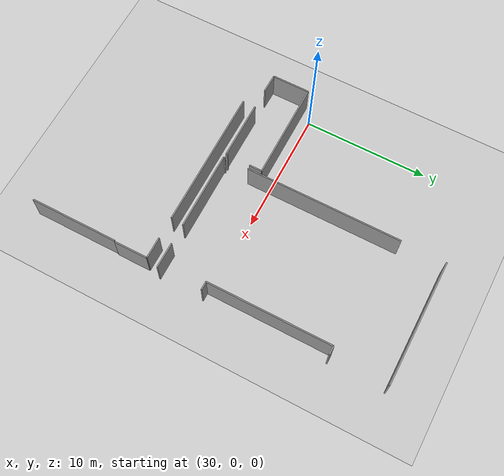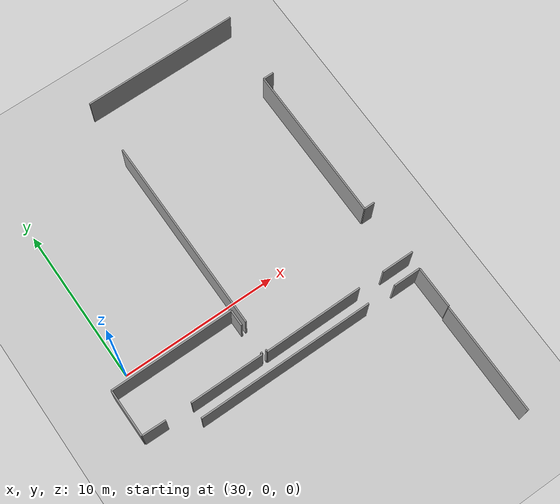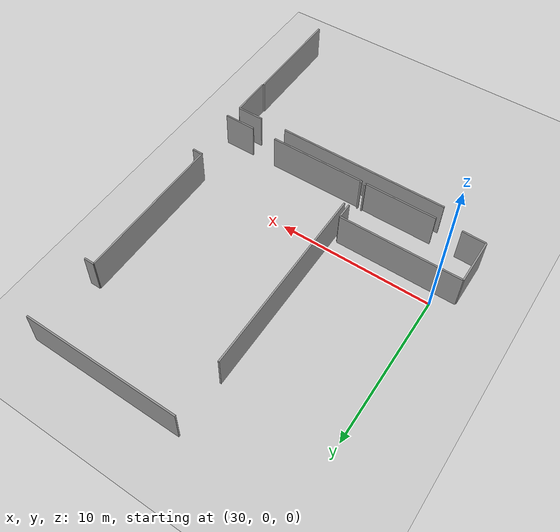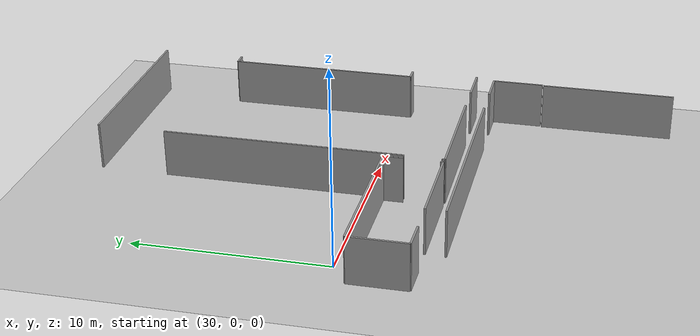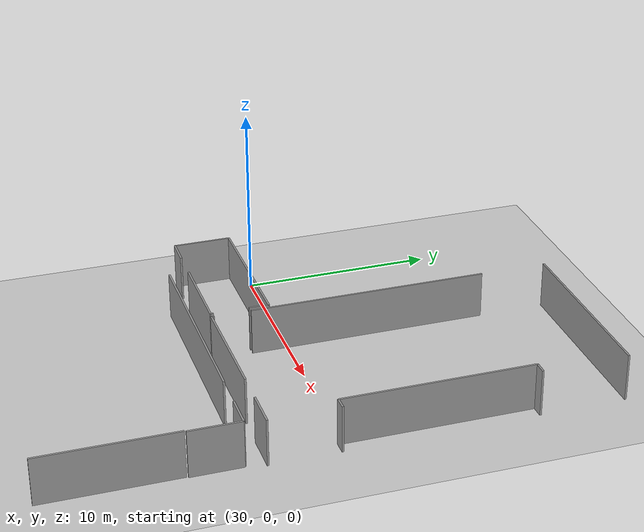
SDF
<sdf version="1.6">
 <world name="default">
  <model name="ground_plane">
   <static>1</static>
   <link name="link">
    <collision name="collision">
     <geometry><plane><normal>0 0 1</normal><size>100 100</size></plane></geometry>
     <surface><friction><ode><mu>100</mu><mu2>50</mu2></ode></friction></surface>
    </collision>
    <visual name="visual">
     <cast_shadows>0</cast_shadows>
     <geometry><plane><normal>0 0 1</normal><size>100 100</size></plane></geometry>
     <material>
      <script><uri>file://media/materials/scripts/gazebo.material</uri><name>Gazebo/Grey</name></script>
     </material>
    </visual>
   </link>
  </model>
  <model name="50045231">
   <static>1</static>
   <link name="Wall_102">
    <collision name="Wall_102_Collision">
     <geometry><box><size>11.2649964155 0.1 2.5</size></box></geometry>
     <pose>5.63249820773 0 1.25 0 0 0</pose>
    </collision>
    <visual name="Wall_102_Visual">
     <pose>5.63249820773 0 1.25 0 0 0</pose>
     <geometry><box><size>11.2649964155 0.1 2.5</size></box></geometry>
     <material>
      <script><uri>file://media/materials/scripts/gazebo.material</uri><name>Gazebo/Grey</name></script>
      <ambient>1 1 1 1</ambient>
     </material>
    </visual>
    <pose>78.9380856612 -19.8384732999 0 0 0 0.0</pose>
   </link>
   <link name="Wall_103">
    <collision name="Wall_103_Collision">
     <geometry><box><size>1.76194796379 0.1 2.5</size></box></geometry>
     <pose>0.880973981893 0 1.25 0 0 0</pose>
    </collision>
    <visual name="Wall_103_Visual">
     <pose>0.880973981893 0 1.25 0 0 0</pose>
     <geometry><box><size>1.76194796379 0.1 2.5</size></box></geometry>
     <material>
      <script><uri>file://media/materials/scripts/gazebo.material</uri><name>Gazebo/Grey</name></script>
      <ambient>1 1 1 1</ambient>
     </material>
    </visual>
    <pose>92.0008120745 -19.8384732999 0 0 0 0.0</pose>
   </link>
   <link name="Wall_104">
    <collision name="Wall_104_Collision">
     <geometry><box><size>2.68987000463 0.1 2.5</size></box></geometry>
     <pose>1.34493500232 0 1.25 0 0 0</pose>
    </collision>
    <visual name="Wall_104_Visual">
     <pose>1.34493500232 0 1.25 0 0 0</pose>
     <geometry><box><size>2.68987000463 0.1 2.5</size></box></geometry>
     <material>
      <script><uri>file://media/materials/scripts/gazebo.material</uri><name>Gazebo/Grey</name></script>
      <ambient>1 1 1 1</ambient>
     </material>
    </visual>
    <pose>93.7627600383 -19.8384732999 0 0 0 -1.57079632679</pose>
   </link>
   <link name="Wall_163">
    <collision name="Wall_163_Collision">
     <geometry><box><size>7.04233572938 0.1 2.5</size></box></geometry>
     <pose>3.52116786469 0 1.25 0 0 0</pose>
    </collision>
    <visual name="Wall_163_Visual">
     <pose>3.52116786469 0 1.25 0 0 0</pose>
     <geometry><box><size>7.04233572938 0.1 2.5</size></box></geometry>
     <material>
      <script><uri>file://media/materials/scripts/gazebo.material</uri><name>Gazebo/Grey</name></script>
      <ambient>1 1 1 1</ambient>
     </material>
    </visual>
    <pose>93.7013469017 -22.5916597408 0 0 0 -1.57079632679</pose>
   </link>
   <link name="Wall_168">
    <collision name="Wall_168_Collision">
     <geometry><box><size>0.150741335228 0.1 2.5</size></box></geometry>
     <pose>0.0753706676141 0 1.25 0 0 0</pose>
    </collision>
    <visual name="Wall_168_Visual">
     <pose>0.0753706676141 0 1.25 0 0 0</pose>
     <geometry><box><size>0.150741335228 0.1 2.5</size></box></geometry>
     <material>
      <script><uri>file://media/materials/scripts/gazebo.material</uri><name>Gazebo/Grey</name></script>
      <ambient>1 1 1 1</ambient>
     </material>
    </visual>
    <pose>83.9820836056 -18.8537060417 0 0 0 1.57079632679</pose>
   </link>
   <link name="Wall_169">
    <collision name="Wall_169_Collision">
     <geometry><box><size>12.5998439294 0.1 2.5</size></box></geometry>
     <pose>6.29992196471 0 1.25 0 0 0</pose>
    </collision>
    <visual name="Wall_169_Visual">
     <pose>6.29992196471 0 1.25 0 0 0</pose>
     <geometry><box><size>12.5998439294 0.1 2.5</size></box></geometry>
     <material>
      <script><uri>file://media/materials/scripts/gazebo.material</uri><name>Gazebo/Grey</name></script>
      <ambient>1 1 1 1</ambient>
     </material>
    </visual>
    <pose>83.9820836056 -16.7869763547 0 0 0 1.57079632679</pose>
   </link>
   <link name="Wall_170">
    <collision name="Wall_170_Collision">
     <geometry><box><size>10.0440931094 0.1 2.5</size></box></geometry>
     <pose>5.02204655471 0 1.25 0 0 0</pose>
    </collision>
    <visual name="Wall_170_Visual">
     <pose>5.02204655471 0 1.25 0 0 0</pose>
     <geometry><box><size>10.0440931094 0.1 2.5</size></box></geometry>
     <material>
      <script><uri>file://media/materials/scripts/gazebo.material</uri><name>Gazebo/Grey</name></script>
      <ambient>1 1 1 1</ambient>
     </material>
    </visual>
    <pose>83.9820836056 -0.621617677847 0 0 0 0.0</pose>
   </link>
   <link name="Wall_171">
    <collision name="Wall_171_Collision">
     <geometry><box><size>0.677828461944 0.1 2.5</size></box></geometry>
     <pose>0.338914230972 0 1.25 0 0 0</pose>
    </collision>
    <visual name="Wall_171_Visual">
     <pose>0.338914230972 0 1.25 0 0 0</pose>
     <geometry><box><size>0.677828461944 0.1 2.5</size></box></geometry>
     <material>
      <script><uri>file://media/materials/scripts/gazebo.material</uri><name>Gazebo/Grey</name></script>
      <ambient>1 1 1 1</ambient>
     </material>
    </visual>
    <pose>94.026176715 -5.15032895363 0 0 0 3.14159265359</pose>
   </link>
   <link name="Wall_172">
    <collision name="Wall_172_Collision">
     <geometry><box><size>10.0451082026 0.1 2.5</size></box></geometry>
     <pose>5.02255410129 0 1.25 0 0 0</pose>
    </collision>
    <visual name="Wall_172_Visual">
     <pose>5.02255410129 0 1.25 0 0 0</pose>
     <geometry><box><size>10.0451082026 0.1 2.5</size></box></geometry>
     <material>
      <script><uri>file://media/materials/scripts/gazebo.material</uri><name>Gazebo/Grey</name></script>
      <ambient>1 1 1 1</ambient>
     </material>
    </visual>
    <pose>93.3483482531 -5.15032895363 0 0 0 -1.57079632679</pose>
   </link>
   <link name="Wall_173">
    <collision name="Wall_173_Collision">
     <geometry><box><size>0.682903927776 0.1 2.5</size></box></geometry>
     <pose>0.341451963888 0 1.25 0 0 0</pose>
    </collision>
    <visual name="Wall_173_Visual">
     <pose>0.341451963888 0 1.25 0 0 0</pose>
     <geometry><box><size>0.682903927776 0.1 2.5</size></box></geometry>
     <material>
      <script><uri>file://media/materials/scripts/gazebo.material</uri><name>Gazebo/Grey</name></script>
      <ambient>1 1 1 1</ambient>
     </material>
    </visual>
    <pose>93.3483482531 -15.1954371562 0 0 0 0.0</pose>
   </link>
   <link name="Wall_174">
    <collision name="Wall_174_Collision">
     <geometry><box><size>2.07320090597 0.1 2.5</size></box></geometry>
     <pose>1.03660045299 0 1.25 0 0 0</pose>
    </collision>
    <visual name="Wall_174_Visual">
     <pose>1.03660045299 0 1.25 0 0 0</pose>
     <geometry><box><size>2.07320090597 0.1 2.5</size></box></geometry>
     <material>
      <script><uri>file://media/materials/scripts/gazebo.material</uri><name>Gazebo/Grey</name></script>
      <ambient>1 1 1 1</ambient>
     </material>
    </visual>
    <pose>94.0312521809 -18.8209692871 0 0 0 3.14159265359</pose>
   </link>
   <link name="Wall_175">
    <collision name="Wall_175_Collision">
     <geometry><box><size>6.3232269642 0.1 2.5</size></box></geometry>
     <pose>3.1616134821 0 1.25 0 0 0</pose>
    </collision>
    <visual name="Wall_175_Visual">
     <pose>3.1616134821 0 1.25 0 0 0</pose>
     <geometry><box><size>6.3232269642 0.1 2.5</size></box></geometry>
     <material>
      <script><uri>file://media/materials/scripts/gazebo.material</uri><name>Gazebo/Grey</name></script>
      <ambient>1 1 1 1</ambient>
     </material>
    </visual>
    <pose>90.3052258265 -18.8209692871 0 0 0 -3.13641540769</pose>
   </link>
   <link name="Wall_176">
    <collision name="Wall_176_Collision">
     <geometry><box><size>3.0199021704 0.1 2.5</size></box></geometry>
     <pose>1.5099510852 0 1.25 0 0 0</pose>
    </collision>
    <visual name="Wall_176_Visual">
     <pose>1.5099510852 0 1.25 0 0 0</pose>
     <geometry><box><size>3.0199021704 0.1 2.5</size></box></geometry>
     <material>
      <script><uri>file://media/materials/scripts/gazebo.material</uri><name>Gazebo/Grey</name></script>
      <ambient>1 1 1 1</ambient>
     </material>
    </visual>
    <pose>75.7767048807 -18.7917853585 0 0 0 1.57079632679</pose>
   </link>
   <link name="Wall_177">
    <collision name="Wall_177_Collision">
     <geometry><box><size>7.90503803427 0.1 2.5</size></box></geometry>
     <pose>3.95251901714 0 1.25 0 0 0</pose>
    </collision>
    <visual name="Wall_177_Visual">
     <pose>3.95251901714 0 1.25 0 0 0</pose>
     <geometry><box><size>7.90503803427 0.1 2.5</size></box></geometry>
     <material>
      <script><uri>file://media/materials/scripts/gazebo.material</uri><name>Gazebo/Grey</name></script>
      <ambient>1 1 1 1</ambient>
     </material>
    </visual>
    <pose>75.7767048807 -15.7718831882 0 0 0 0.0</pose>
   </link>
   <link name="Wall_178">
    <collision name="Wall_178_Collision">
     <geometry><box><size>1.04047049568 0.1 2.5</size></box></geometry>
     <pose>0.520235247841 0 1.25 0 0 0</pose>
    </collision>
    <visual name="Wall_178_Visual">
     <pose>0.520235247841 0 1.25 0 0 0</pose>
     <geometry><box><size>1.04047049568 0.1 2.5</size></box></geometry>
     <material>
      <script><uri>file://media/materials/scripts/gazebo.material</uri><name>Gazebo/Grey</name></script>
      <ambient>1 1 1 1</ambient>
     </material>
    </visual>
    <pose>83.681742915 -15.7718831882 0 0 0 -1.57079632679</pose>
   </link>
   <link name="Wall_179">
    <collision name="Wall_179_Collision">
     <geometry><box><size>0.139575310396 0.1 2.5</size></box></geometry>
     <pose>0.0697876551982 0 1.25 0 0 0</pose>
    </collision>
    <visual name="Wall_179_Visual">
     <pose>0.0697876551982 0 1.25 0 0 0</pose>
     <geometry><box><size>0.139575310396 0.1 2.5</size></box></geometry>
     <material>
      <script><uri>file://media/materials/scripts/gazebo.material</uri><name>Gazebo/Grey</name></script>
      <ambient>1 1 1 1</ambient>
     </material>
    </visual>
    <pose>83.681742915 -18.6775873773 0 0 0 -1.57079632679</pose>
   </link>
   <link name="Wall_180">
    <collision name="Wall_180_Collision">
     <geometry><box><size>4.72018322432 0.1 2.5</size></box></geometry>
     <pose>2.36009161216 0 1.25 0 0 0</pose>
    </collision>
    <visual name="Wall_180_Visual">
     <pose>2.36009161216 0 1.25 0 0 0</pose>
     <geometry><box><size>4.72018322432 0.1 2.5</size></box></geometry>
     <material>
      <script><uri>file://media/materials/scripts/gazebo.material</uri><name>Gazebo/Grey</name></script>
      <ambient>1 1 1 1</ambient>
     </material>
    </visual>
    <pose>83.681742915 -18.8171626877 0 0 0 3.14159265359</pose>
   </link>
   <link name="Wall_181">
    <collision name="Wall_181_Collision">
     <geometry><box><size>1.52894092947 0.1 2.5</size></box></geometry>
     <pose>0.764470464736 0 1.25 0 0 0</pose>
    </collision>
    <visual name="Wall_181_Visual">
     <pose>0.764470464736 0 1.25 0 0 0</pose>
     <geometry><box><size>1.52894092947 0.1 2.5</size></box></geometry>
     <material>
      <script><uri>file://media/materials/scripts/gazebo.material</uri><name>Gazebo/Grey</name></script>
      <ambient>1 1 1 1</ambient>
     </material>
    </visual>
    <pose>77.3054351895 -18.8171626877 0 0 0 3.12499391257</pose>
   </link>
   <pose>-47.0 14.9250800972 0 0 0 0</pose>
  </model>
 </world>
</sdf>
